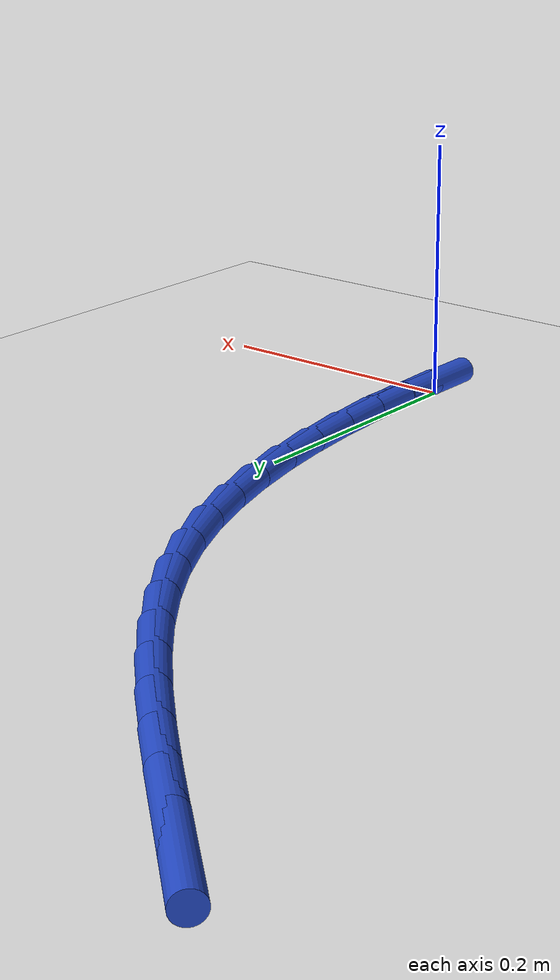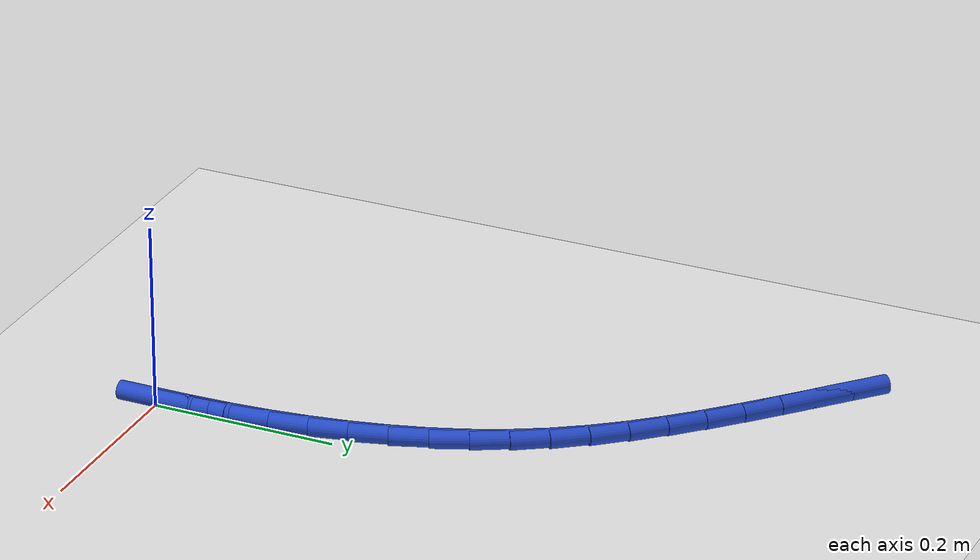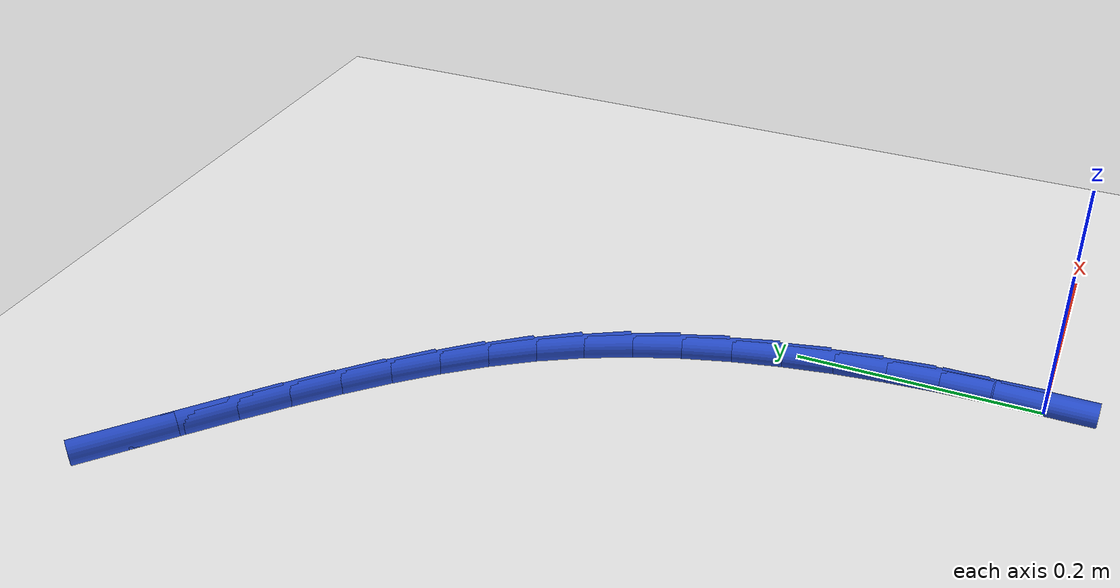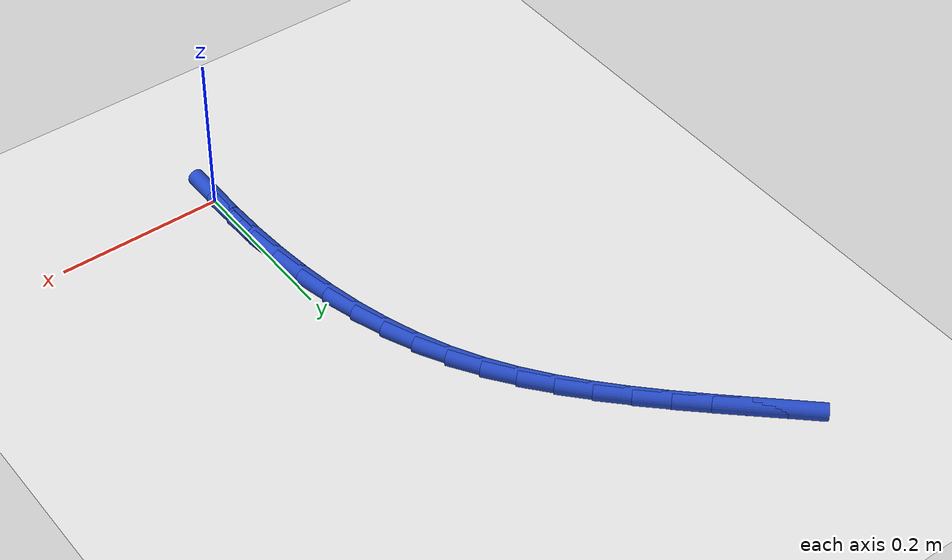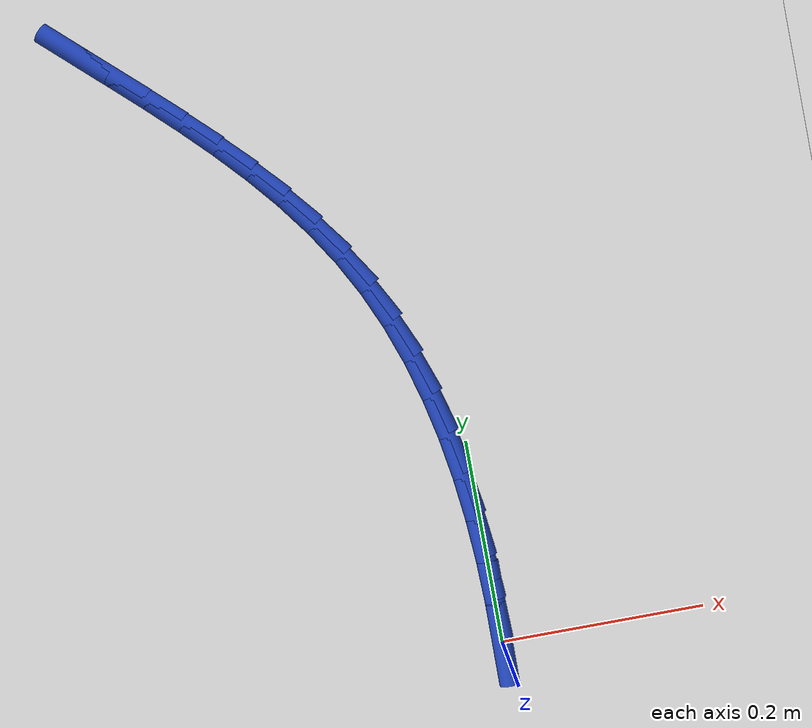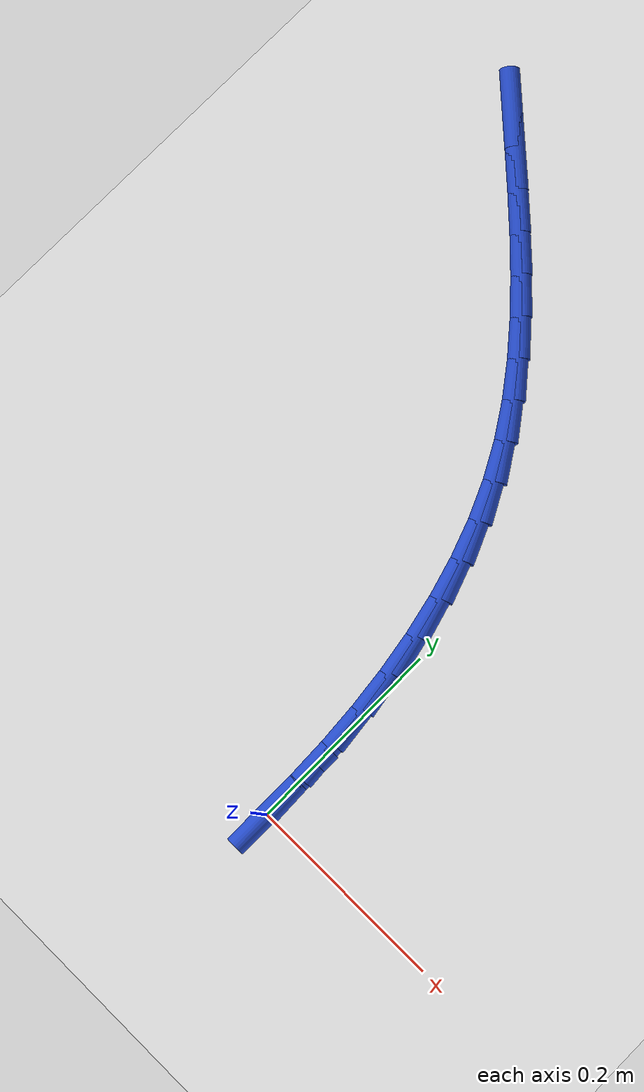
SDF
<sdf version="1.6">
 <world name="default">
  <model name="ground_plane">
   <static>1</static>
   <link name="link">
    <collision name="collision">
     <geometry><plane><normal>0 0 1</normal><size>100 100</size></plane></geometry>
     <surface><friction><ode><mu>100</mu><mu2>50</mu2></ode></friction></surface>
    </collision>
    <visual name="visual">
     <cast_shadows>0</cast_shadows>
     <geometry><plane><normal>0 0 1</normal><size>100 100</size></plane></geometry>
     <material>
      <script><uri>file://media/materials/scripts/gazebo.material</uri><name>Gazebo/WhiteGlow</name></script>
     </material>
    </visual>
   </link>
  </model>
  <model name="line">
   <link name="link_1">
    <pose>7.994607583801138e-05 0.042383370344566206 0.01 0 1.57 -1.5371404964698139</pose>
    <collision name="collision">
     <geometry><cylinder><radius>0.01</radius><length>0.08</length></cylinder></geometry>
    </collision>
    <visual name="visual">
     <material>
      <script><name>Gazebo/Blue</name><uri>file://media/materials/scripts/gazebo.material</uri></script>
     </material>
     <geometry><cylinder><radius>0.01</radius><length>0.08</length></cylinder></geometry>
    </visual>
   </link>
   <link name="link_2">
    <pose>-0.0013482450795866082 0.0848025249586542 0.01 0 1.57 -1.4976890243337277</pose>
    <collision name="collision">
     <geometry><cylinder><radius>0.01</radius><length>0.08</length></cylinder></geometry>
    </collision>
    <visual name="visual">
     <material>
      <script><name>Gazebo/Blue</name><uri>file://media/materials/scripts/gazebo.material</uri></script>
     </material>
     <geometry><cylinder><radius>0.01</radius><length>0.08</length></cylinder></geometry>
    </visual>
   </link>
   <link name="link_3">
    <pose>-0.004441875248247093 0.12704340397521033 0.01 0 1.57 -1.4538522677081198</pose>
    <collision name="collision">
     <geometry><cylinder><radius>0.01</radius><length>0.08</length></cylinder></geometry>
    </collision>
    <visual name="visual">
     <material>
      <script><name>Gazebo/Blue</name><uri>file://media/materials/scripts/gazebo.material</uri></script>
     </material>
     <geometry><cylinder><radius>0.01</radius><length>0.08</length></cylinder></geometry>
    </visual>
   </link>
   <link name="link_4">
    <pose>-0.009358246212116686 0.16889194752718073 0.01 0 1.57 -1.4051116423561114</pose>
    <collision name="collision">
     <geometry><cylinder><radius>0.01</radius><length>0.08</length></cylinder></geometry>
    </collision>
    <visual name="visual">
     <material>
      <script><name>Gazebo/Blue</name><uri>file://media/materials/scripts/gazebo.material</uri></script>
     </material>
     <geometry><cylinder><radius>0.01</radius><length>0.08</length></cylinder></geometry>
    </visual>
   </link>
   <link name="link_5">
    <pose>-0.016254659753168657 0.21013409574751185 0.01 0 1.57 -1.350921620914655</pose>
    <collision name="collision">
     <geometry><cylinder><radius>0.01</radius><length>0.08</length></cylinder></geometry>
    </collision>
    <visual name="visual">
     <material>
      <script><name>Gazebo/Blue</name><uri>file://media/materials/scripts/gazebo.material</uri></script>
     </material>
     <geometry><cylinder><radius>0.01</radius><length>0.08</length></cylinder></geometry>
    </visual>
   </link>
   <link name="link_6">
    <pose>-0.02528841765337627 0.2505557887691498 0.01 0 1.57 -1.2907388603148904</pose>
    <collision name="collision">
     <geometry><cylinder><radius>0.01</radius><length>0.08</length></cylinder></geometry>
    </collision>
    <visual name="visual">
     <material>
      <script><name>Gazebo/Blue</name><uri>file://media/materials/scripts/gazebo.material</uri></script>
     </material>
     <geometry><cylinder><radius>0.01</radius><length>0.08</length></cylinder></geometry>
    </visual>
   </link>
   <link name="link_7">
    <pose>-0.03661682169471276 0.289942966725041 0.01 0 1.57 -1.2240700871968735</pose>
    <collision name="collision">
     <geometry><cylinder><radius>0.01</radius><length>0.08</length></cylinder></geometry>
    </collision>
    <visual name="visual">
     <material>
      <script><name>Gazebo/Blue</name><uri>file://media/materials/scripts/gazebo.material</uri></script>
     </material>
     <geometry><cylinder><radius>0.01</radius><length>0.08</length></cylinder></geometry>
    </visual>
   </link>
   <link name="link_8">
    <pose>-0.050397173659151404 0.3280815697481316 0.01 0 1.57 -1.150543545263765</pose>
    <collision name="collision">
     <geometry><cylinder><radius>0.01</radius><length>0.08</length></cylinder></geometry>
    </collision>
    <visual name="visual">
     <material>
      <script><name>Gazebo/Blue</name><uri>file://media/materials/scripts/gazebo.material</uri></script>
     </material>
     <geometry><cylinder><radius>0.01</radius><length>0.08</length></cylinder></geometry>
    </visual>
   </link>
   <link name="link_9">
    <pose>-0.06678677532866543 0.3647575379713679 0.01 0 1.57 -1.0703292855983892</pose>
    <collision name="collision">
     <geometry><cylinder><radius>0.01</radius><length>0.08</length></cylinder></geometry>
    </collision>
    <visual name="visual">
     <material>
      <script><name>Gazebo/Blue</name><uri>file://media/materials/scripts/gazebo.material</uri></script>
     </material>
     <geometry><cylinder><radius>0.01</radius><length>0.08</length></cylinder></geometry>
    </visual>
   </link>
   <link name="link_10">
    <pose>-0.08593309527881403 0.39976577043389694 0.01 0 1.57 -0.9914253341035991</pose>
    <collision name="collision">
     <geometry><cylinder><radius>0.01</radius><length>0.08</length></cylinder></geometry>
    </collision>
    <visual name="visual">
     <material>
      <script><name>Gazebo/Blue</name><uri>file://media/materials/scripts/gazebo.material</uri></script>
     </material>
     <geometry><cylinder><radius>0.01</radius><length>0.08</length></cylinder></geometry>
    </visual>
   </link>
   <link name="link_11">
    <pose>-0.10775114898136404 0.433112951168003 0.01 0 1.57 -0.9225399749263474</pose>
    <collision name="collision">
     <geometry><cylinder><radius>0.01</radius><length>0.08</length></cylinder></geometry>
    </collision>
    <visual name="visual">
     <material>
      <script><name>Gazebo/Blue</name><uri>file://media/materials/scripts/gazebo.material</uri></script>
     </material>
     <geometry><cylinder><radius>0.01</radius><length>0.08</length></cylinder></geometry>
    </visual>
   </link>
   <link name="link_12">
    <pose>-0.1319199500811498 0.46502078239450856 0.01 0 1.57 -0.8645424695875745</pose>
    <collision name="collision">
     <geometry><cylinder><radius>0.01</radius><length>0.08</length></cylinder></geometry>
    </collision>
    <visual name="visual">
     <material>
      <script><name>Gazebo/Blue</name><uri>file://media/materials/scripts/gazebo.material</uri></script>
     </material>
     <geometry><cylinder><radius>0.01</radius><length>0.08</length></cylinder></geometry>
    </visual>
   </link>
   <link name="link_13">
    <pose>-0.15810796922088907 0.4957205719260494 0.01 0 1.57 -0.8174598723026759</pose>
    <collision name="collision">
     <geometry><cylinder><radius>0.01</radius><length>0.08</length></cylinder></geometry>
    </collision>
    <visual name="visual">
     <material>
      <script><name>Gazebo/Blue</name><uri>file://media/materials/scripts/gazebo.material</uri></script>
     </material>
     <geometry><cylinder><radius>0.01</radius><length>0.08</length></cylinder></geometry>
    </visual>
   </link>
   <link name="link_14">
    <pose>-0.18598367704329974 0.5254436275752616 0.01 0 1.57 -0.7810305607558886</pose>
    <collision name="collision">
     <geometry><cylinder><radius>0.01</radius><length>0.08</length></cylinder></geometry>
    </collision>
    <visual name="visual">
     <material>
      <script><name>Gazebo/Blue</name><uri>file://media/materials/scripts/gazebo.material</uri></script>
     </material>
     <geometry><cylinder><radius>0.01</radius><length>0.08</length></cylinder></geometry>
    </visual>
   </link>
   <link name="link_15">
    <pose>-0.2152155441910995 0.5544212571547813 0.01 0 1.57 -0.7548731529399327</pose>
    <collision name="collision">
     <geometry><cylinder><radius>0.01</radius><length>0.08</length></cylinder></geometry>
    </collision>
    <visual name="visual">
     <material>
      <script><name>Gazebo/Blue</name><uri>file://media/materials/scripts/gazebo.material</uri></script>
     </material>
     <geometry><cylinder><radius>0.01</radius><length>0.08</length></cylinder></geometry>
    </visual>
   </link>
   <link name="link_16">
    <pose>-0.24547204130700634 0.5828847684772445 0.01 0 1.57 -0.7386053055957184</pose>
    <collision name="collision">
     <geometry><cylinder><radius>0.01</radius><length>0.08</length></cylinder></geometry>
    </collision>
    <visual name="visual">
     <material>
      <script><name>Gazebo/Blue</name><uri>file://media/materials/scripts/gazebo.material</uri></script>
     </material>
     <geometry><cylinder><radius>0.01</radius><length>0.08</length></cylinder></geometry>
    </visual>
   </link>
   <link name="link_17">
    <pose>-0.2764216390337379 0.611065469355287 0.01 0 1.57 -0.7319170598536419</pose>
    <collision name="collision">
     <geometry><cylinder><radius>0.01</radius><length>0.08</length></cylinder></geometry>
    </collision>
    <visual name="visual">
     <material>
      <script><name>Gazebo/Blue</name><uri>file://media/materials/scripts/gazebo.material</uri></script>
     </material>
     <geometry><cylinder><radius>0.01</radius><length>0.08</length></cylinder></geometry>
    </visual>
   </link>
   <link name="link_18">
    <pose>-0.307732808014012 0.6391946676015449 0.01 0 1.57 -0.7346087441562124</pose>
    <collision name="collision">
     <geometry><cylinder><radius>0.01</radius><length>0.08</length></cylinder></geometry>
    </collision>
    <visual name="visual">
     <material>
      <script><name>Gazebo/Blue</name><uri>file://media/materials/scripts/gazebo.material</uri></script>
     </material>
     <geometry><cylinder><radius>0.01</radius><length>0.08</length></cylinder></geometry>
    </visual>
   </link>
   <link name="link_160">
    <pose>3.382710778154774e-17 1.249000902703301e-16 0.01 0 1.57 1.5680827811823583</pose>
    <collision name="collision">
     <geometry><cylinder><radius>0.01</radius><length>0.08</length></cylinder></geometry>
    </collision>
    <visual name="visual">
     <material>
      <script><name>Gazebo/Blue</name><uri>file://media/materials/scripts/gazebo.material</uri></script>
     </material>
     <geometry><cylinder><radius>0.01</radius><length>0.08</length></cylinder></geometry>
    </visual>
   </link>
   <link name="link_161">
    <pose>0.0001150808120751615 0.042409653659006764 0.01 0 1.57 1.568082781182358</pose>
    <collision name="collision">
     <geometry><cylinder><radius>0.01</radius><length>0.08</length></cylinder></geometry>
    </collision>
    <visual name="visual">
     <material>
      <script><name>Gazebo/Blue</name><uri>file://media/materials/scripts/gazebo.material</uri></script>
     </material>
     <geometry><cylinder><radius>0.01</radius><length>0.08</length></cylinder></geometry>
    </visual>
   </link>
  </model>
 </world>
</sdf>
